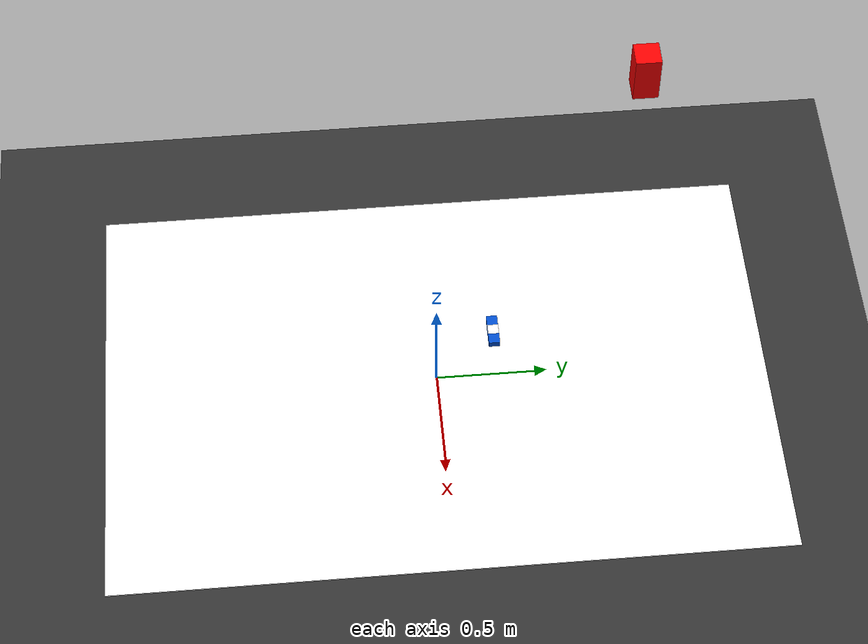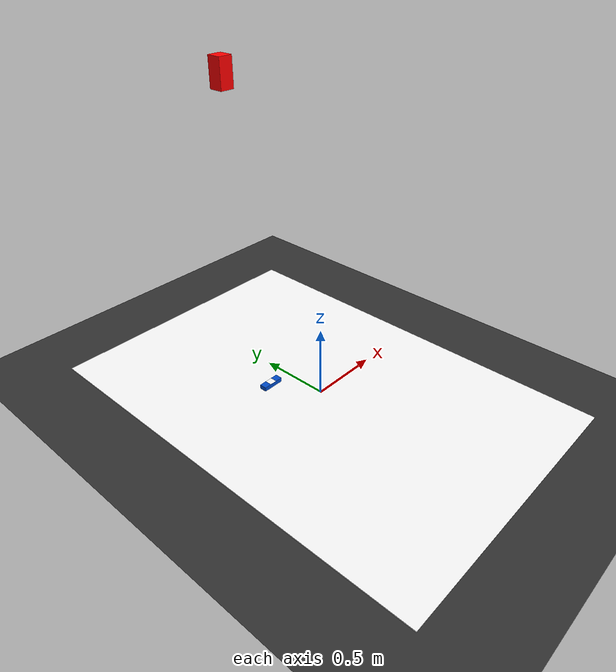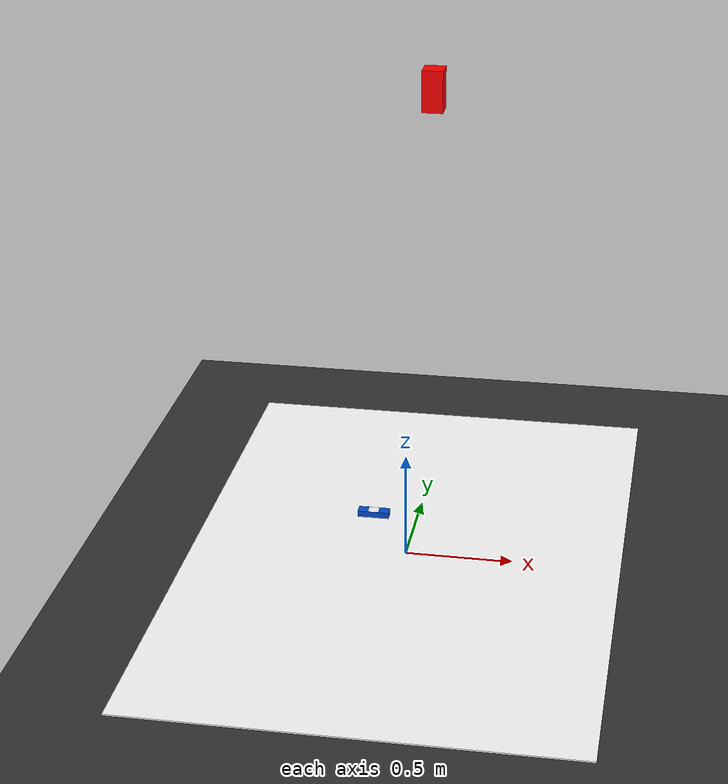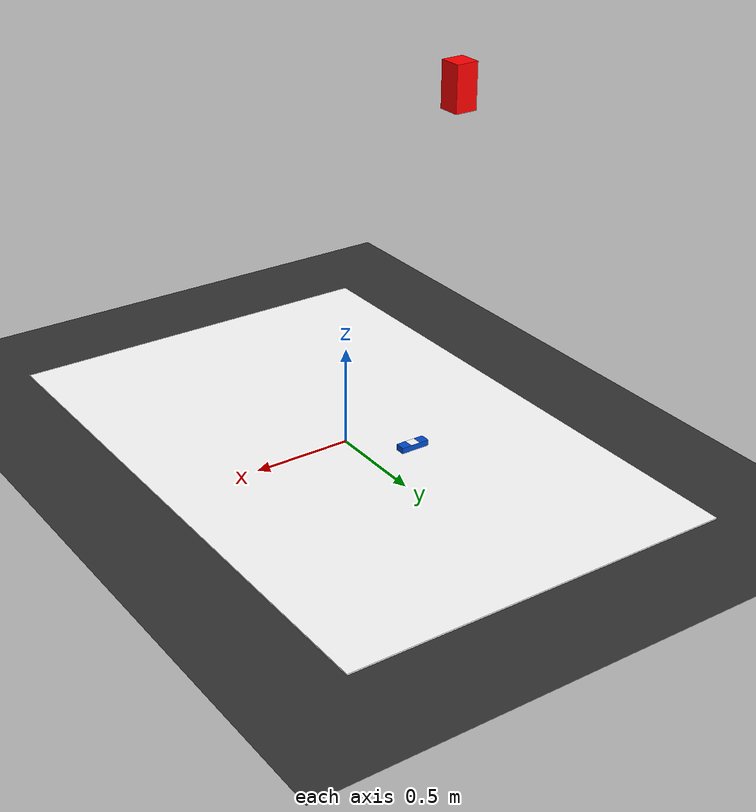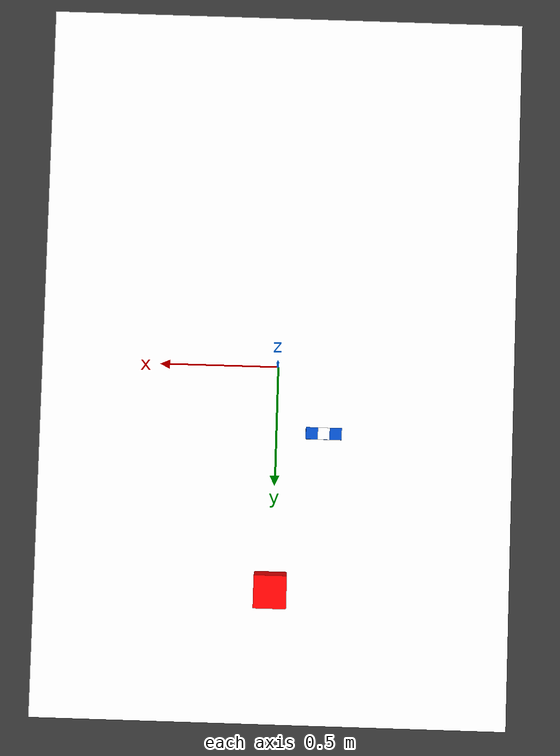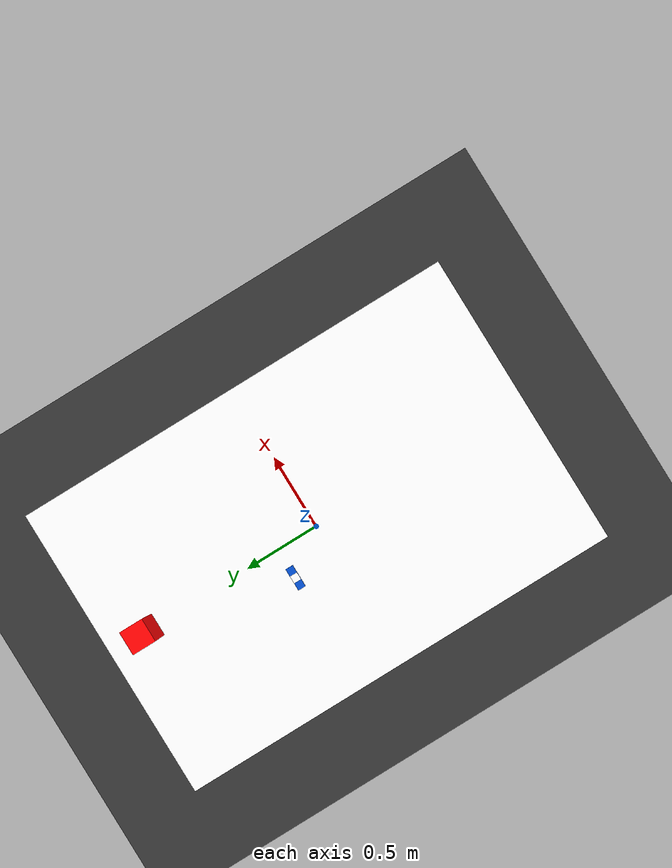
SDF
<?xml version="1.0"?>
<sdf version="1.9">
  <world name="eurobot_2026_arena">
    <!-- Set the background color -->
    <background>
      <color>0.7 0.7 0.7 1</color>
    </background>

    <!-- Add a light source -->
    <light type="directional" name="sun">
      <diffuse>1 1 1 1</diffuse>
      <specular>0.5 0.5 0.5 1</specular>
      <direction>-0.5 0.5 -1</direction>
    </light>

    <!-- Set the gravity of the world -->
    <gravity>0 0 -9.81</gravity>

    <!-- Set the physics engine -->
    <physics type="ode">
      <max_step_size>0.001</max_step_size>
      <real_time_update_rate>1000</real_time_update_rate>
      <ode>
        <solver>
          <iters>50</iters>
          <sor>1.3</sor>
        </solver>
      </ode>
    </physics>
    <plugin
        filename="libignition-gazebo-physics-system.so"
        name="ignition::gazebo::systems::Physics">
    </plugin>
    <plugin
        filename="libignition-gazebo-user-commands-system.so"
        name="ignition::gazebo::systems::UserCommands">
    </plugin>
    <plugin
        filename="libignition-gazebo-scene-broadcaster-system.so"
        name="ignition::gazebo::systems::SceneBroadcaster">
    </plugin>

    <model name="ground_plane">
        <static>true</static>
        <link name="link">
            <collision name="collision">
            <geometry>
                <plane>
                <normal>0 0 1</normal>
                </plane>
            </geometry>
            </collision>
            <visual name="visual">
            <geometry>
                <plane>
                <normal>0 0 1</normal>
                <size>20 20</size>
                </plane>
            </geometry>
            <material>
                <ambient>0.8 0.8 0.8 1</ambient>
                <diffuse>0.2 0.2 0.2 1</diffuse>
                <specular>0.8 0.8 0.8 1</specular>
            </material>
            </visual>
        </link>
    </model>

    <model name="fixed_camera">
      <static>true</static>
      <pose>0 0.8 2 0 1.57 0</pose>
      <link name="link">
        <visual name="visual">
          <geometry>
            <box>
              <size>0.2 0.1 0.1</size>
            </box>
          </geometry>
          <material>
            <diffuse>1 0 0 1</diffuse>
          </material>
        </visual>

          <plugin filename="libgz-sim-sensors-system.so" name="gz::sim::systems::Sensors">
            <render_engine>ogre2</render_engine>
            <use_hdr>true</use_hdr>
            <gamma_correction>true</gamma_correction>
            <antialiasing>4</antialiasing>
            <high_quality_shadows>true</high_quality_shadows>
          </plugin>
        <!-- Camera specs -->
         <sensor name="camera" type="camera">
          <always_on>true</always_on>
          <update_rate>30</update_rate>
          <visualize>true</visualize>
          <topic>camera/image_raw</topic>

          <camera>
            <horizontal_fov>1.047</horizontal_fov>
            <image>
              <width>700</width>
              <height>600</height>
            </image>
          </camera>
          <clip>
            <near>0.1</near>
            <far>100</far>
          </clip>
          <distortion>
              <k1>0</k1>
              <k2>0</k2>
              <k3>0</k3>
              <p1>0</p1>
              <p2>0</p2>
              <center>0.5 0.5</center>
            </distortion>
          <!-- High-quality rendering using OGRE2 -->
          <plugin filename="libgz-sim-sensors-system.so" name="gz::sim::systems::Sensors">
            <render_engine>ogre2</render_engine>
            <use_hdr>true</use_hdr>
            <gamma_correction>true</gamma_correction>
            <antialiasing>4</antialiasing>
            <high_quality_shadows>true</high_quality_shadows>
          </plugin>
        </sensor>
      </link>
    </model>

    <!-- Include mat model -->
    <include>
      <uri>file://models/mat</uri>
      <pose>0 0 0 0 0 0</pose>
    </include>

    <include>
      <uri>file://models/crate_blue</uri>
      <name>crate_blue_001</name>
      <pose>-0.200000 0.275000 0.050000 0 0 0.000000</pose>
    </include>

  </world>
</sdf>

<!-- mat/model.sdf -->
<sdf version="1.9">
  <!-- Define a floor mat (3000mm x 2000mm x 70mm) -->
	<model name="floor_mat">
		<static>true</static>
		<link name="floor_link">
			<collision name="collision">
				<geometry>
					<box>
						<size>2 3 0.007</size>  <!-- 3000mm x 2000mm x 70mm -->
					</box>
				</geometry>
				<surface>
					<friction>
						<ode>
							<mu>0.9</mu>
							<mu2>0.9</mu2>
						</ode>
					</friction>
				</surface>
			</collision>
			<visual name="visual">
					<geometry>
							<box>
									<size>2 3 0.007</size> <!-- 3000mm x 2000mm x 70mm -->
							</box>
					</geometry>
					<material>
							<diffuse>1 1 1 1</diffuse>
							<pbr>
									<metal>
											<albedo_map>file://models/mat/mat.png</albedo_map>
											<metalness>0.0</metalness>
											<roughness>0.8</roughness>
									</metal>
							</pbr>
					</material>
			</visual>
		</link>
	</model>
</sdf>

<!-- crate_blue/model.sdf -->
<sdf version="1.9">
  <model name="Crate">
    <static>false</static>
    <link name="link">
      <inertial>
        <mass>0.17</mass>
        <inertia>
          <ixx>0.166</ixx>
          <iyy>0.166</iyy>
          <izz>0.166</izz>
          <ixy>0</ixy>
          <ixz>0</ixz>
          <iyz>0</iyz>
        </inertia>
      </inertial>

      <collision name="collision">
        <geometry>
          <box>
            <size>0.15 0.05 0.03</size>
          </box>
        </geometry>
        <surface>
          <friction>
            <ode>
              <mu>1.0</mu>
              <mu2>1.0</mu2>
            </ode>
          </friction>
          <bounce/>
          <contact/>
        </surface>
      </collision>

      <visual name="visual">
        <geometry>
          <box>
            <size>0.15 0.05 0.03</size>
          </box>
        </geometry>
        <material>
          <ambient>0.0 0.3 0.8 1</ambient>
          <diffuse>0.0 0.3 0.8 1</diffuse>
          <specular>0.2 0.2 0.2 1</specular>
        </material>
      </visual>
      <visual name="aruco_top">
        <pose>0 0 0.0155 0 0 0</pose>
        <cast_shadows>false</cast_shadows>
        <geometry>
          <plane>
            <size>0.05 0.05</size>
            <normal>0 0 1</normal>
            <texture>
              <size>0.05 0.05</size>
            </texture>
          </plane>
        </geometry>
        <material>
          <diffuse>1 1 1 1</diffuse>
          <!-- ↑this is must!!!! -->
          <pbr>
            <metal>
              <albedo_map>model://models/aruco/aruco_126.png</albedo_map>
              <metalness>0.0</metalness>
              <roughness>0.0</roughness>
            </metal>
          </pbr>
          <double_sided>true</double_sided>
        </material>
      </visual>
    </link>
  </model>
</sdf>
